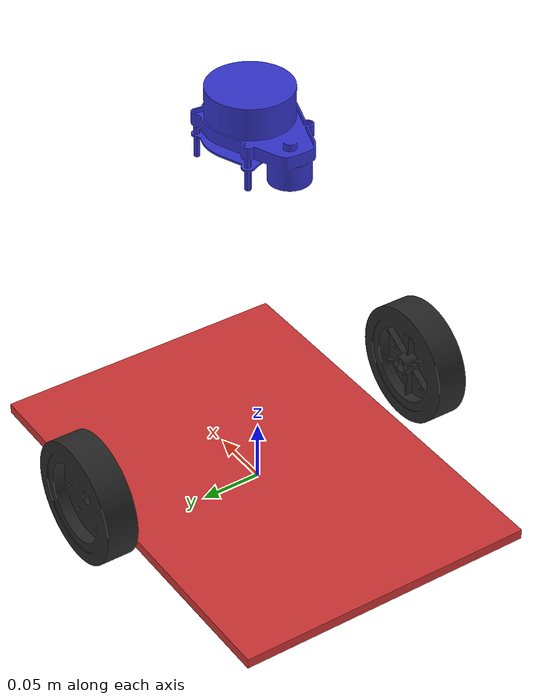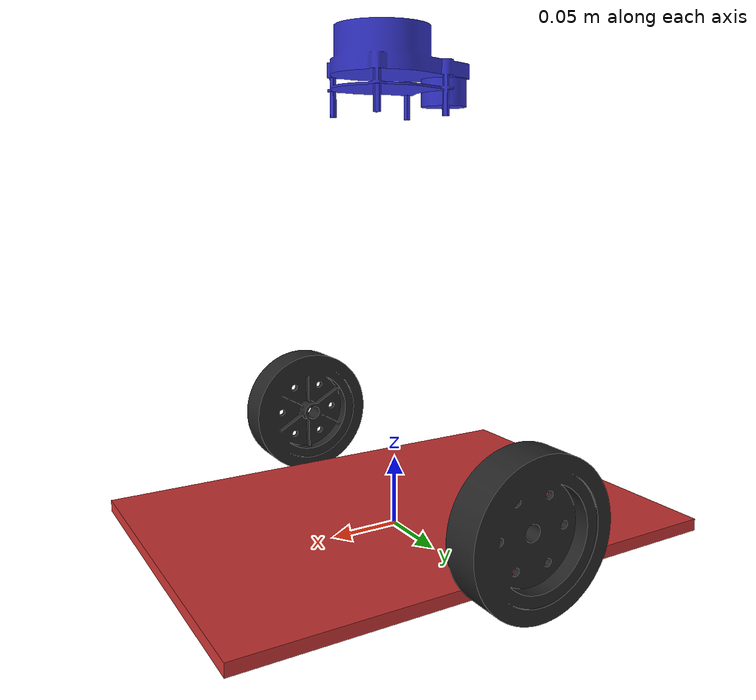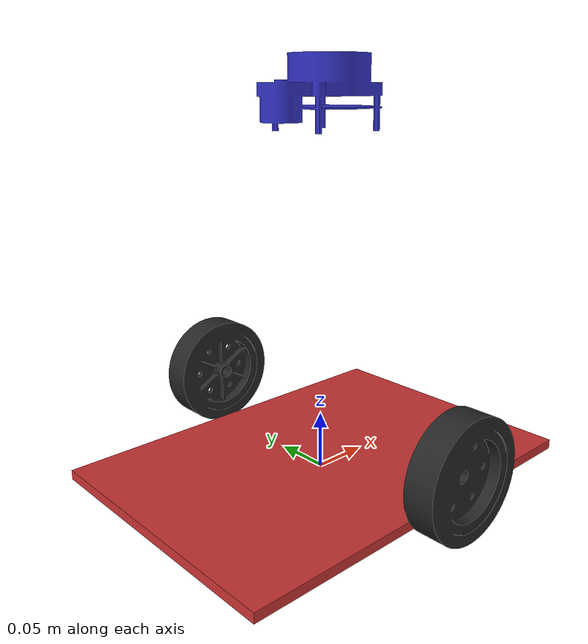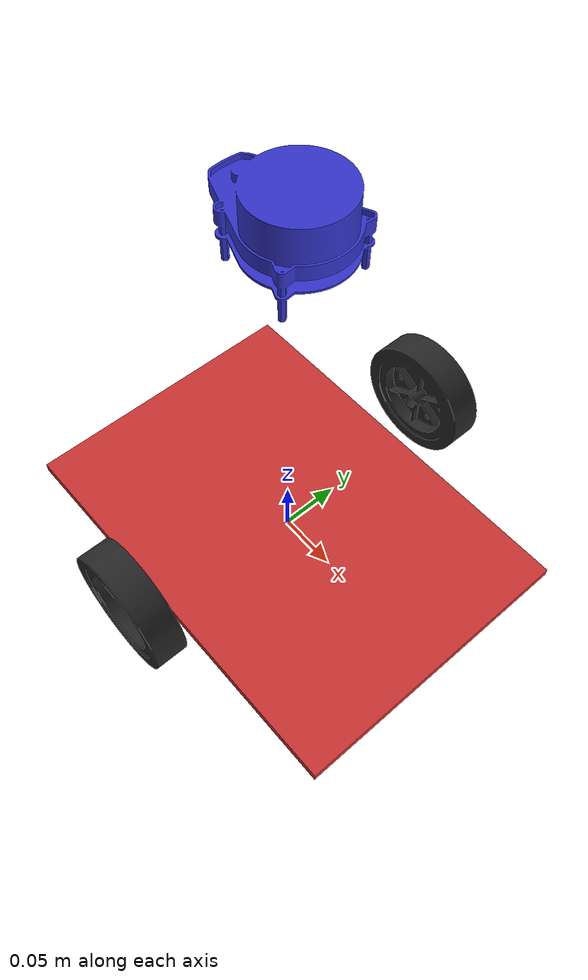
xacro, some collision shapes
<?xml version="1.0" ?>
<robot name="naviclean" xmlns:xacro="http://www.ros.org/wiki/xacro">

<xacro:arg name="is_sim" default="true"></xacro:arg>

<xacro:include filename="$(find naviclean_description)/urdf/materials.xacro" />
<xacro:include filename="$(find naviclean_description)/urdf/naviclean.trans" />
<xacro:include filename="$(find naviclean_description)/urdf/naviclean.gazebo" />
<xacro:include filename="$(find naviclean_description)/urdf/naviclean_ros2_control.xacro" />

<link name="base_footprint"/>

<link name="base_link">
  <inertial>
    <origin xyz="0.0017954772285289646 -0.000557274001101866 0.10557528717752657" rpy="0 0 0"/>
    <mass value="8.848545144554517"/>
    <inertia ixx="0.114087" iyy="0.120961" izz="0.134988" ixy="-0.003548" iyz="0.004215" ixz="0.006819"/>
  </inertial>
  <visual>
    <origin xyz="0 0 0" rpy="0 0 0"/>
    <geometry>
      <mesh filename="package://naviclean_description/meshes/base_link.stl" scale="0.001 0.001 0.001"/>
    </geometry>
    <material name="red"/>
  </visual>
  <collision>
    <origin xyz="0.0 0 0.006" rpy="0 0 0"/>
    <geometry>
      <box size="0.35 0.25 0.0085" />
    </geometry>
  </collision>
</link>

<joint name="basefoot2baselink" type="fixed">
  <parent link="base_footprint"/>
  <child link="base_link"/>
  <origin xyz="0 0 0" rpy="0 0 0"/>
  <axis xyz="0 0 0"/>
</joint>

<link name="right_wheel_1">
  <inertial>
    <origin xyz="-1.9475303414941916e-15 -0.007842031913982417 1.2323475573339238e-14" rpy="0 0 0"/>
    <mass value="1.0207980214073957"/>
    <inertia ixx="0.000884" iyy="0.00167" izz="0.000884" ixy="-0.0" iyz="-0.0" ixz="-0.0"/>
  </inertial>
  <visual>
    <origin xyz="-0.0 0.144 -0.05" rpy="0 0 0"/>
    <geometry>
      <mesh filename="package://naviclean_description/meshes/right_wheel_1.stl" scale="0.001 0.001 0.001"/>
    </geometry>
    <material name="black"/>
  </visual>
  <collision>
    <origin xyz="-0.0 0.144 -0.05" rpy="0 0 0"/>
    <geometry>
      <mesh filename="package://naviclean_description/meshes/right_wheel_1.stl" scale="0.001 0.001 0.001"/>
    </geometry>
  </collision>
</link>

<link name="left_wheel_1">
  <inertial>
    <origin xyz="2.5866925465521704e-15 0.007842031913982556 1.2288781103819701e-14" rpy="0 0 0"/>
    <mass value="1.0207980214073957"/>
    <inertia ixx="0.000884" iyy="0.00167" izz="0.000884" ixy="0.0" iyz="0.0" ixz="0.0"/>
  </inertial>
  <visual>
    <origin xyz="0.0 -0.144 -0.05" rpy="0 0 0"/>
    <geometry>
      <mesh filename="package://naviclean_description/meshes/left_wheel_1.stl" scale="0.001 0.001 0.001"/>
    </geometry>
    <material name="black"/>
  </visual>
  <collision>
    <origin xyz="0.0 -0.144 -0.05" rpy="0 0 0"/>
    <geometry>
      <mesh filename="package://naviclean_description/meshes/left_wheel_1.stl" scale="0.001 0.001 0.001"/>
    </geometry>
  </collision>
</link>

<link name="ydlidar_1">
  <inertial>
    <origin xyz="0.026706155403509572 0.025000237545982823 0.037701142222791084" rpy="0 0 0"/>
    <mass value="1.1515616542314233"/>
    <inertia ixx="0.000489" iyy="0.000861" izz="0.000987" ixy="-0.0" iyz="-0.0" ixz="-0.000148"/>
  </inertial>
  <visual>
    <origin xyz="0.0 0.0 -0.335" rpy="0 0 0"/>
    <geometry>
      <mesh filename="package://naviclean_description/meshes/ydlidar_1.stl" scale="0.001 0.001 0.001"/>
    </geometry>
    <material name="blue"/>
  </visual>
  <collision>
    <origin xyz="0.0 0.0 -0.335" rpy="0 0 0"/>
    <geometry>
      <mesh filename="package://naviclean_description/meshes/ydlidar_1.stl" scale="0.001 0.001 0.001"/>
    </geometry>
  </collision>
</link>

<joint name="base2right" type="continuous">
  <origin xyz="0.0 -0.144 0.05" rpy="0 0 0"/>
  <parent link="base_link"/>
  <child link="right_wheel_1"/>
  <axis xyz="-0.0 1.0 0.0"/>
</joint>

<joint name="base2left" type="continuous">
  <origin xyz="0.0 0.144 0.05" rpy="0 0 0"/>
  <parent link="base_link"/>
  <child link="left_wheel_1"/>
  <axis xyz="0.0 1.0 0.0"/>
</joint>

<joint name="base2lidar" type="fixed">
  <origin xyz="-0.0 -0.0 0.335" rpy="0 0 0"/>
  <parent link="base_link"/>
  <child link="ydlidar_1"/>
</joint>

</robot>

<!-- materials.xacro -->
<robot name="naviclean" xmlns:xacro="http://www.ros.org/wiki/xacro" >

<material name="silver_default">
  <color rgba="0.700 0.700 0.700 1.000"/>
</material>
<material name="steel_satin">
  <color rgba="0.6274509803921569 0.6274509803921569 0.6274509803921569 1.0"/>
</material>
<material name="abs_white">
  <color rgba="0.2 0.2 0.2 1.0"/>
</material>
<material name="blue">
  <color rgba="0.2 0.2 0.8 1.0"/>
</material>
<material name="red">
  <color rgba="0.8 0.2 0.2 1.0"/>
</material>
<material name="black">
  <color rgba="0.15 0.15 0.15 1.0"/>
</material>
</robot>

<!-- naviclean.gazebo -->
<robot name="naviclean" xmlns:xacro="http://www.ros.org/wiki/xacro">

  <xacro:property name="body_color" value="Gazebo/Red" />
  <xacro:property name="wheels" value="Gazebo/Black" />
  <xacro:property name="imu" value="Gazebo/PurpleGlow" />
  <xacro:property name="lidar" value="Gazebo/BlueGlow" />
  <xacro:property name="depth_cam" value="Gazebo/TurquoiseGlow" />
  <xacro:property name="plate" value="Gazebo/Green" />

  <gazebo>
    <plugin name="control" filename="libgazebo_ros_control.so" />
  </gazebo>
  <gazebo reference="base_link">
    <material>${body_color}</material>
    <mu1>0.2</mu1>
    <mu2>0.2</mu2>
  </gazebo>

  <gazebo reference="right_wheel_1">
    <material>${wheels}</material>
    <mu1>1000</mu1>
    <mu2>1000</mu2>
  </gazebo>

  <gazebo reference="left_wheel_1">
    <material>${wheels}</material>
    <mu1>1000</mu1>
    <mu2>1000</mu2>
  </gazebo>

  <gazebo reference="ydlidar_1">
    <material>${lidar}</material>
    <mu1>0.2</mu1>
    <mu2>0.2</mu2>
  </gazebo>

  <gazebo>
    <plugin name="diff_drive_control" filename="libgazebo_ros_diff_drive.so">

      <update_rate>20</update_rate>

      <left_joint>base2left</left_joint>
      <right_joint>base2right</right_joint>

      <wheel_separation>0.288</wheel_separation>
      <wheel_diameter>0.1</wheel_diameter>

      <publish_odom>true</publish_odom>
      <publish_odom_tf>true</publish_odom_tf>
      <publish_wheel_tf>true</publish_wheel_tf>

      <odometry_topic>naviclean_controller/odom</odometry_topic>
      <odometry_frame>odom</odometry_frame>
      <robot_base_frame>base_footprint</robot_base_frame>

    </plugin>
  </gazebo>

  <!-- hokuyo -->
  <gazebo reference="ydlidar_1">
    <sensor type="ray" name="head_hokuyo_sensor_1">
      <pose>0 0 0 0 0 0</pose>
      <visualize>false</visualize>
      <update_rate>10</update_rate>
      <ray>
        <scan>
          <horizontal>
            <samples>720</samples>
            <resolution>1</resolution>
            <min_angle>-3.14</min_angle>
            <max_angle>3.14</max_angle>
          </horizontal>
        </scan>
        <range>
          <min>0.05</min>
          <max>30.0</max>
          <resolution>0.01</resolution>
        </range>
      </ray>
      <plugin name="lidar_plugin" filename="libgazebo_ros_ray_sensor.so">
        <ros>
          <remapping>~/out:=scan</remapping>
        </ros>
        <output_type>sensor_msgs/LaserScan</output_type>
        <min_intensity>100.0</min_intensity>
        <frame_name>ydlidar_1</frame_name>
      </plugin>
    </sensor>
  </gazebo>

</robot>
